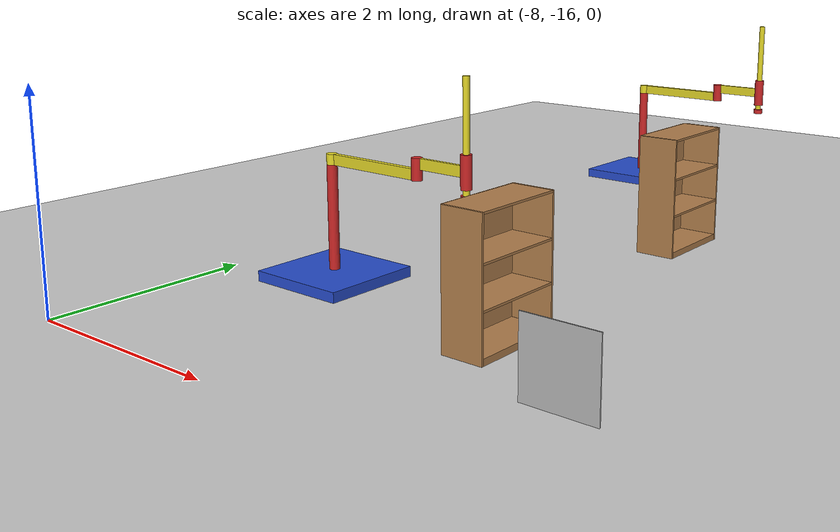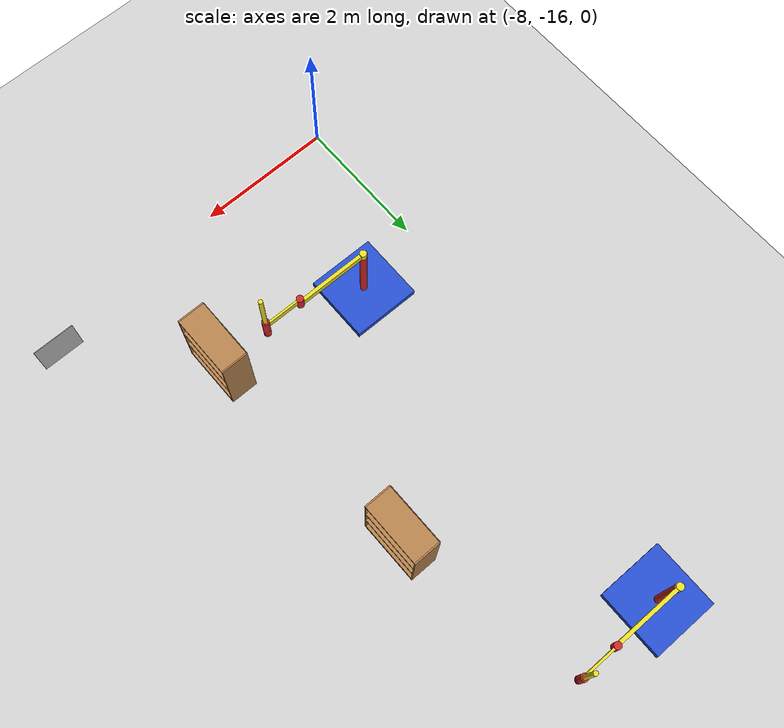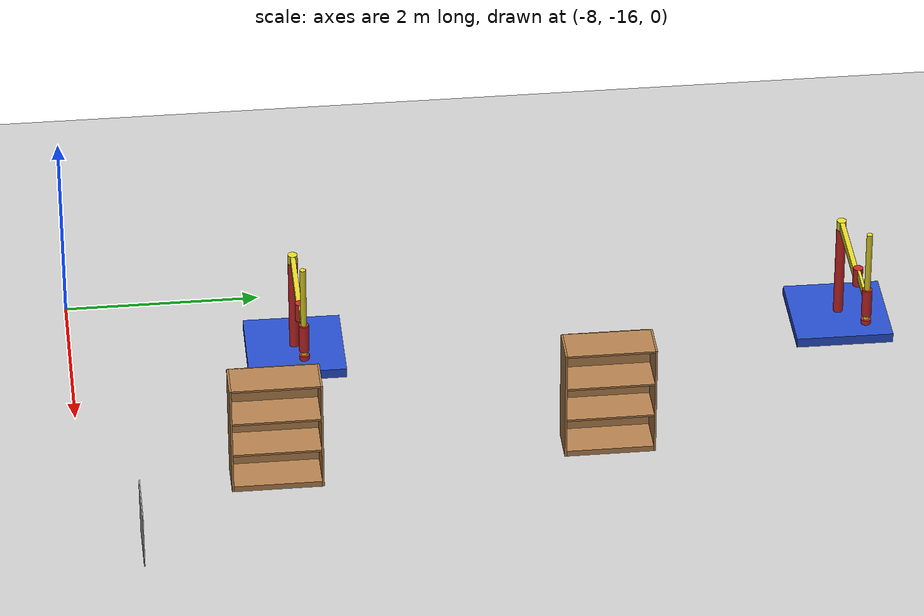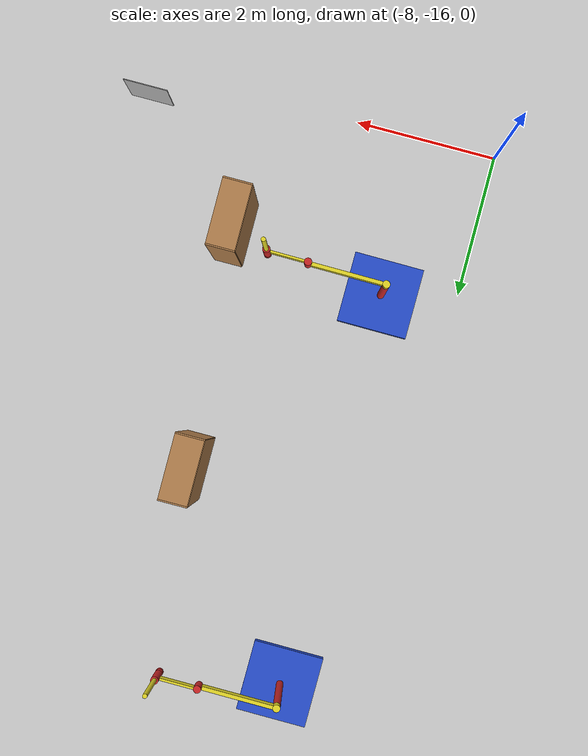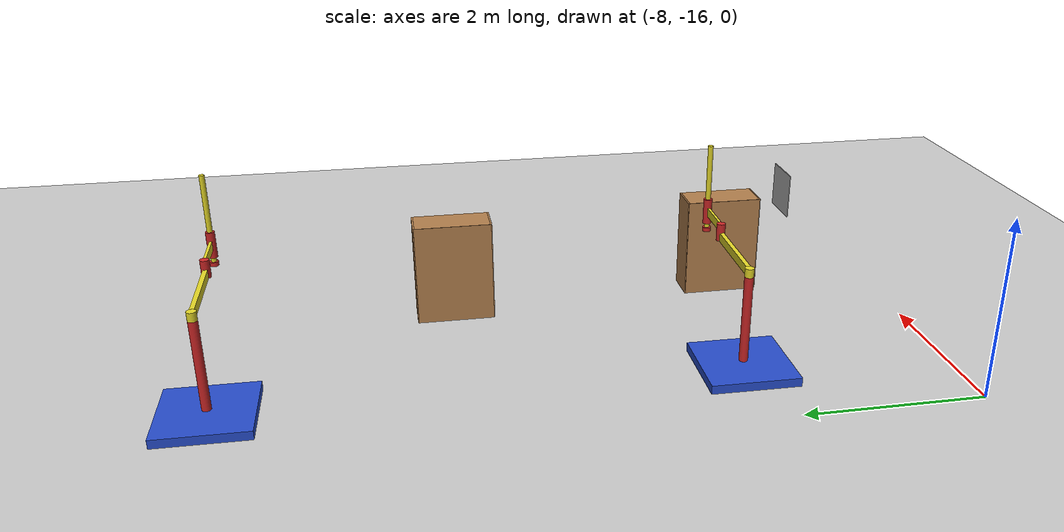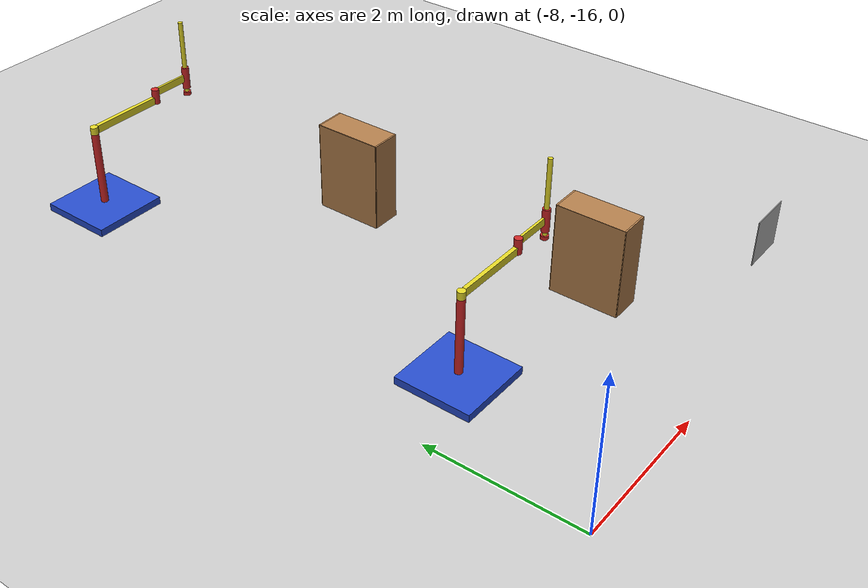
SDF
<sdf version="1.7">
 <world name="default">
  <model name="ground_plane">
   <static>1</static>
   <link name="link">
    <collision name="collision">
     <geometry><plane><normal>0 0 1</normal><size>25 25</size></plane></geometry>
     <surface><friction><ode><mu>100</mu><mu2>50</mu2></ode></friction></surface>
    </collision>
    <visual name="visual">
     <cast_shadows>0</cast_shadows>
     <geometry><plane><normal>0 0 1</normal><size>25 25</size></plane></geometry>
     <material>
      <script><uri>file://media/materials/scripts/gazebo.material</uri><name>Gazebo/Grey</name></script>
     </material>
    </visual>
   </link>
  </model>
  <model name="static_apriltag_5">
   <link name="link">
    <pose>0 0 0 -1.57 1.57 -0</pose>
    <inertial>
     <mass>0.39</mass>
     <inertia><ixx>0.00058</ixx><ixy>0</ixy><ixz>0</ixz><iyy>0.00058</iyy><iyz>0</iyz><izz>0.00019</izz></inertia>
    </inertial>
    <collision name="collision"><geometry><box><size>0.6 0.6 0.01</size></box></geometry></collision>
    <visual name="visual">
     <geometry><box><size>0.6 0.6 0.01</size></box></geometry>
     <material>
      <script>
       <uri>model://apriltag/materials/scripts</uri>
       <uri>model://apriltag/materials/textures</uri>
       <name>apriltag/Diffuse5</name>
      </script>
     </material>
    </visual>
    <gravity>0</gravity>
   </link>
   <pose>-3.19181 -15.4682 0.65103 0.000796 0.000796 1e-06</pose>
   <static>1</static>
   <pose>5.04082 3.71574 0 0 -0 0</pose>
  </model>
  <model name="simple_arm_clone">
   <link name="arm_base">
    <inertial>
     <pose>0 0 0.00099 0 -0 0</pose>
     <inertia><ixx>1.11</ixx><ixy>0</ixy><ixz>0</ixz><iyy>100.11</iyy><iyz>0</iyz><izz>1.01</izz></inertia>
     <mass>101</mass>
    </inertial>
    <collision name="arm_base_geom">
     <pose>0 0 0.05 0 -0 0</pose>
     <geometry><box><size>1 1 0.1</size></box></geometry>
    </collision>
    <visual name="arm_base_geom_visual">
     <pose>0 0 0.05 0 -0 0</pose>
     <geometry><box><size>1 1 0.1</size></box></geometry>
     <material>
      <script><uri>file://media/materials/scripts/gazebo.material</uri><name>Gazebo/Blue</name></script>
     </material>
    </visual>
    <collision name="arm_base_geom_arm_trunk">
     <pose>0 0 0.6 0 -0 0</pose>
     <geometry><cylinder><radius>0.05</radius><length>1</length></cylinder></geometry>
    </collision>
    <visual name="arm_base_geom_arm_trunk_visual">
     <pose>0 0 0.6 0 -0 0</pose>
     <geometry><cylinder><radius>0.05</radius><length>1</length></cylinder></geometry>
     <material>
      <script><uri>file://media/materials/scripts/gazebo.material</uri><name>Gazebo/Red</name></script>
     </material>
    </visual>
   </link>
   <link name="arm_shoulder_pan">
    <pose>0 0 1.1 0 -0 0</pose>
    <inertial>
     <pose>0.045455 0 0 0 -0 0</pose>
     <inertia><ixx>0.011</ixx><ixy>0</ixy><ixz>0</ixz><iyy>0.0225</iyy><iyz>0</iyz><izz>0.0135</izz></inertia>
     <mass>1.1</mass>
    </inertial>
    <collision name="arm_shoulder_pan_geom">
     <pose>0 0 0.05 0 -0 0</pose>
     <geometry><cylinder><radius>0.05</radius><length>0.1</length></cylinder></geometry>
    </collision>
    <visual name="arm_shoulder_pan_geom_visual">
     <pose>0 0 0.05 0 -0 0</pose>
     <geometry><cylinder><radius>0.05</radius><length>0.1</length></cylinder></geometry>
     <material>
      <script><uri>file://media/materials/scripts/gazebo.material</uri><name>Gazebo/Yellow</name></script>
     </material>
    </visual>
    <collision name="arm_shoulder_pan_geom_arm_shoulder">
     <pose>0.55 0 0.05 0 -0 0</pose>
     <geometry><box><size>1 0.05 0.1</size></box></geometry>
    </collision>
    <visual name="arm_shoulder_pan_geom_arm_shoulder_visual">
     <pose>0.55 0 0.05 0 -0 0</pose>
     <geometry><box><size>1 0.05 0.1</size></box></geometry>
     <material>
      <script><uri>file://media/materials/scripts/gazebo.material</uri><name>Gazebo/Yellow</name></script>
     </material>
    </visual>
   </link>
   <link name="arm_elbow_pan">
    <pose>1.05 0 1.1 0 -0 0</pose>
    <inertial>
     <pose>0.0875 0 0.083333 0 -0 0</pose>
     <inertia>
      <ixx>0.031</ixx>
      <ixy>0</ixy>
      <ixz>0.005</ixz>
      <iyy>0.07275</iyy>
      <iyz>0</iyz>
      <izz>0.04475</izz>
     </inertia>
     <mass>1.2</mass>
    </inertial>
    <collision name="arm_elbow_pan_geom">
     <pose>0 0 0.1 0 -0 0</pose>
     <geometry><cylinder><radius>0.05</radius><length>0.2</length></cylinder></geometry>
    </collision>
    <visual name="arm_elbow_pan_geom_visual">
     <pose>0 0 0.1 0 -0 0</pose>
     <geometry><cylinder><radius>0.05</radius><length>0.2</length></cylinder></geometry>
     <material>
      <script><uri>file://media/materials/scripts/gazebo.material</uri><name>Gazebo/Red</name></script>
     </material>
    </visual>
    <collision name="arm_elbow_pan_geom_arm_elbow">
     <pose>0.3 0 0.15 0 -0 0</pose>
     <geometry><box><size>0.5 0.03 0.1</size></box></geometry>
    </collision>
    <visual name="arm_elbow_pan_geom_arm_elbow_visual">
     <pose>0.3 0 0.15 0 -0 0</pose>
     <geometry><box><size>0.5 0.03 0.1</size></box></geometry>
     <material>
      <script><uri>file://media/materials/scripts/gazebo.material</uri><name>Gazebo/Yellow</name></script>
     </material>
    </visual>
    <collision name="arm_elbow_pan_geom_arm_wrist">
     <pose>0.55 0 0.15 0 -0 0</pose>
     <geometry><cylinder><radius>0.05</radius><length>0.3</length></cylinder></geometry>
    </collision>
    <visual name="arm_elbow_pan_geom_arm_wrist_visual">
     <pose>0.55 0 0.15 0 -0 0</pose>
     <geometry><cylinder><radius>0.05</radius><length>0.3</length></cylinder></geometry>
     <material>
      <script><uri>file://media/materials/scripts/gazebo.material</uri><name>Gazebo/Red</name></script>
     </material>
    </visual>
   </link>
   <link name="arm_wrist_lift">
    <pose>1.6 0 1.05 0 -0 0</pose>
    <inertial>
     <inertia><ixx>0.01</ixx><ixy>0</ixy><ixz>0</ixz><iyy>0.01</iyy><iyz>0</iyz><izz>0.001</izz></inertia>
     <mass>0.1</mass>
    </inertial>
    <collision name="arm_wrist_lift_geom">
     <pose>0 0 0.5 0 -0 0</pose>
     <geometry><cylinder><radius>0.03</radius><length>1</length></cylinder></geometry>
    </collision>
    <visual name="arm_wrist_lift_geom_visual">
     <pose>0 0 0.5 0 -0 0</pose>
     <geometry><cylinder><radius>0.03</radius><length>1</length></cylinder></geometry>
     <material>
      <script><uri>file://media/materials/scripts/gazebo.material</uri><name>Gazebo/Yellow</name></script>
     </material>
    </visual>
   </link>
   <link name="arm_wrist_roll">
    <pose>1.6 0 1 0 -0 0</pose>
    <inertial>
     <inertia><ixx>0.01</ixx><ixy>0</ixy><ixz>0</ixz><iyy>0.01</iyy><iyz>0</iyz><izz>0.001</izz></inertia>
     <mass>0.1</mass>
    </inertial>
    <collision name="arm_wrist_roll_geom">
     <pose>0 0 0.025 0 -0 0</pose>
     <geometry><cylinder><radius>0.05</radius><length>0.05</length></cylinder></geometry>
    </collision>
    <visual name="arm_wrist_roll_geom_visual">
     <pose>0 0 0.025 0 -0 0</pose>
     <geometry><cylinder><radius>0.05</radius><length>0.05</length></cylinder></geometry>
     <material>
      <script><uri>file://media/materials/scripts/gazebo.material</uri><name>Gazebo/Red</name></script>
     </material>
    </visual>
   </link>
   <joint name="arm_shoulder_pan_joint" type="revolute">
    <parent>arm_base</parent>
    <child>arm_shoulder_pan</child>
    <axis>
     <dynamics>
      <damping>1</damping>
      <friction>0</friction>
      <spring_reference>0</spring_reference>
      <spring_stiffness>0</spring_stiffness>
     </dynamics>
     <xyz expressed_in="__model__">0 0 1</xyz>
     <limit><lower>-1e+16</lower><upper>1e+16</upper></limit>
    </axis>
   </joint>
   <joint name="arm_elbow_pan_joint" type="revolute">
    <parent>arm_shoulder_pan</parent>
    <child>arm_elbow_pan</child>
    <axis>
     <dynamics>
      <damping>1</damping>
      <friction>0</friction>
      <spring_reference>0</spring_reference>
      <spring_stiffness>0</spring_stiffness>
     </dynamics>
     <xyz expressed_in="__model__">0 0 1</xyz>
     <limit><lower>-1e+16</lower><upper>1e+16</upper></limit>
    </axis>
   </joint>
   <joint name="arm_wrist_lift_joint" type="prismatic">
    <parent>arm_elbow_pan</parent>
    <child>arm_wrist_lift</child>
    <axis>
     <dynamics>
      <damping>1</damping>
      <friction>0</friction>
      <spring_reference>0</spring_reference>
      <spring_stiffness>0</spring_stiffness>
     </dynamics>
     <limit><lower>-0.8</lower><upper>0.1</upper></limit>
     <xyz expressed_in="__model__">0 0 1</xyz>
    </axis>
   </joint>
   <joint name="arm_wrist_roll_joint" type="revolute">
    <parent>arm_wrist_lift</parent>
    <child>arm_wrist_roll</child>
    <axis>
     <dynamics>
      <damping>1</damping>
      <friction>0</friction>
      <spring_reference>0</spring_reference>
      <spring_stiffness>0</spring_stiffness>
     </dynamics>
     <limit><lower>-2.99999</lower><upper>2.99999</upper></limit>
     <xyz expressed_in="__model__">0 0 1</xyz>
    </axis>
   </joint>
   <pose>-6.96317 -8.0337 -0 0 -0 -0.008518</pose>
  </model>
  <model name="simple_arm_clone_0">
   <link name="arm_base">
    <inertial>
     <pose>0 0 0.00099 0 -0 0</pose>
     <inertia><ixx>1.11</ixx><ixy>0</ixy><ixz>0</ixz><iyy>100.11</iyy><iyz>0</iyz><izz>1.01</izz></inertia>
     <mass>101</mass>
    </inertial>
    <collision name="arm_base_geom">
     <pose>0 0 0.05 0 -0 0</pose>
     <geometry><box><size>1 1 0.1</size></box></geometry>
    </collision>
    <visual name="arm_base_geom_visual">
     <pose>0 0 0.05 0 -0 0</pose>
     <geometry><box><size>1 1 0.1</size></box></geometry>
     <material>
      <script><uri>file://media/materials/scripts/gazebo.material</uri><name>Gazebo/Blue</name></script>
     </material>
    </visual>
    <collision name="arm_base_geom_arm_trunk">
     <pose>0 0 0.6 0 -0 0</pose>
     <geometry><cylinder><radius>0.05</radius><length>1</length></cylinder></geometry>
    </collision>
    <visual name="arm_base_geom_arm_trunk_visual">
     <pose>0 0 0.6 0 -0 0</pose>
     <geometry><cylinder><radius>0.05</radius><length>1</length></cylinder></geometry>
     <material>
      <script><uri>file://media/materials/scripts/gazebo.material</uri><name>Gazebo/Red</name></script>
     </material>
    </visual>
   </link>
   <link name="arm_shoulder_pan">
    <pose>0 0 1.1 0 -0 0</pose>
    <inertial>
     <pose>0.045455 0 0 0 -0 0</pose>
     <inertia><ixx>0.011</ixx><ixy>0</ixy><ixz>0</ixz><iyy>0.0225</iyy><iyz>0</iyz><izz>0.0135</izz></inertia>
     <mass>1.1</mass>
    </inertial>
    <collision name="arm_shoulder_pan_geom">
     <pose>0 0 0.05 0 -0 0</pose>
     <geometry><cylinder><radius>0.05</radius><length>0.1</length></cylinder></geometry>
    </collision>
    <visual name="arm_shoulder_pan_geom_visual">
     <pose>0 0 0.05 0 -0 0</pose>
     <geometry><cylinder><radius>0.05</radius><length>0.1</length></cylinder></geometry>
     <material>
      <script><uri>file://media/materials/scripts/gazebo.material</uri><name>Gazebo/Yellow</name></script>
     </material>
    </visual>
    <collision name="arm_shoulder_pan_geom_arm_shoulder">
     <pose>0.55 0 0.05 0 -0 0</pose>
     <geometry><box><size>1 0.05 0.1</size></box></geometry>
    </collision>
    <visual name="arm_shoulder_pan_geom_arm_shoulder_visual">
     <pose>0.55 0 0.05 0 -0 0</pose>
     <geometry><box><size>1 0.05 0.1</size></box></geometry>
     <material>
      <script><uri>file://media/materials/scripts/gazebo.material</uri><name>Gazebo/Yellow</name></script>
     </material>
    </visual>
   </link>
   <link name="arm_elbow_pan">
    <pose>1.05 0 1.1 0 -0 0</pose>
    <inertial>
     <pose>0.0875 0 0.083333 0 -0 0</pose>
     <inertia>
      <ixx>0.031</ixx>
      <ixy>0</ixy>
      <ixz>0.005</ixz>
      <iyy>0.07275</iyy>
      <iyz>0</iyz>
      <izz>0.04475</izz>
     </inertia>
     <mass>1.2</mass>
    </inertial>
    <collision name="arm_elbow_pan_geom">
     <pose>0 0 0.1 0 -0 0</pose>
     <geometry><cylinder><radius>0.05</radius><length>0.2</length></cylinder></geometry>
    </collision>
    <visual name="arm_elbow_pan_geom_visual">
     <pose>0 0 0.1 0 -0 0</pose>
     <geometry><cylinder><radius>0.05</radius><length>0.2</length></cylinder></geometry>
     <material>
      <script><uri>file://media/materials/scripts/gazebo.material</uri><name>Gazebo/Red</name></script>
     </material>
    </visual>
    <collision name="arm_elbow_pan_geom_arm_elbow">
     <pose>0.3 0 0.15 0 -0 0</pose>
     <geometry><box><size>0.5 0.03 0.1</size></box></geometry>
    </collision>
    <visual name="arm_elbow_pan_geom_arm_elbow_visual">
     <pose>0.3 0 0.15 0 -0 0</pose>
     <geometry><box><size>0.5 0.03 0.1</size></box></geometry>
     <material>
      <script><uri>file://media/materials/scripts/gazebo.material</uri><name>Gazebo/Yellow</name></script>
     </material>
    </visual>
    <collision name="arm_elbow_pan_geom_arm_wrist">
     <pose>0.55 0 0.15 0 -0 0</pose>
     <geometry><cylinder><radius>0.05</radius><length>0.3</length></cylinder></geometry>
    </collision>
    <visual name="arm_elbow_pan_geom_arm_wrist_visual">
     <pose>0.55 0 0.15 0 -0 0</pose>
     <geometry><cylinder><radius>0.05</radius><length>0.3</length></cylinder></geometry>
     <material>
      <script><uri>file://media/materials/scripts/gazebo.material</uri><name>Gazebo/Red</name></script>
     </material>
    </visual>
   </link>
   <link name="arm_wrist_lift">
    <pose>1.6 0 1.05 0 -0 0</pose>
    <inertial>
     <inertia><ixx>0.01</ixx><ixy>0</ixy><ixz>0</ixz><iyy>0.01</iyy><iyz>0</iyz><izz>0.001</izz></inertia>
     <mass>0.1</mass>
    </inertial>
    <collision name="arm_wrist_lift_geom">
     <pose>0 0 0.5 0 -0 0</pose>
     <geometry><cylinder><radius>0.03</radius><length>1</length></cylinder></geometry>
    </collision>
    <visual name="arm_wrist_lift_geom_visual">
     <pose>0 0 0.5 0 -0 0</pose>
     <geometry><cylinder><radius>0.03</radius><length>1</length></cylinder></geometry>
     <material>
      <script><uri>file://media/materials/scripts/gazebo.material</uri><name>Gazebo/Yellow</name></script>
     </material>
    </visual>
   </link>
   <link name="arm_wrist_roll">
    <pose>1.6 0 1 0 -0 0</pose>
    <inertial>
     <inertia><ixx>0.01</ixx><ixy>0</ixy><ixz>0</ixz><iyy>0.01</iyy><iyz>0</iyz><izz>0.001</izz></inertia>
     <mass>0.1</mass>
    </inertial>
    <collision name="arm_wrist_roll_geom">
     <pose>0 0 0.025 0 -0 0</pose>
     <geometry><cylinder><radius>0.05</radius><length>0.05</length></cylinder></geometry>
    </collision>
    <visual name="arm_wrist_roll_geom_visual">
     <pose>0 0 0.025 0 -0 0</pose>
     <geometry><cylinder><radius>0.05</radius><length>0.05</length></cylinder></geometry>
     <material>
      <script><uri>file://media/materials/scripts/gazebo.material</uri><name>Gazebo/Red</name></script>
     </material>
    </visual>
   </link>
   <joint name="arm_shoulder_pan_joint" type="revolute">
    <parent>arm_base</parent>
    <child>arm_shoulder_pan</child>
    <axis>
     <dynamics>
      <damping>1</damping>
      <friction>0</friction>
      <spring_reference>0</spring_reference>
      <spring_stiffness>0</spring_stiffness>
     </dynamics>
     <xyz expressed_in="__model__">0 0 1</xyz>
     <limit><lower>-1e+16</lower><upper>1e+16</upper></limit>
    </axis>
   </joint>
   <joint name="arm_elbow_pan_joint" type="revolute">
    <parent>arm_shoulder_pan</parent>
    <child>arm_elbow_pan</child>
    <axis>
     <dynamics>
      <damping>1</damping>
      <friction>0</friction>
      <spring_reference>0</spring_reference>
      <spring_stiffness>0</spring_stiffness>
     </dynamics>
     <xyz expressed_in="__model__">0 0 1</xyz>
     <limit><lower>-1e+16</lower><upper>1e+16</upper></limit>
    </axis>
   </joint>
   <joint name="arm_wrist_lift_joint" type="prismatic">
    <parent>arm_elbow_pan</parent>
    <child>arm_wrist_lift</child>
    <axis>
     <dynamics>
      <damping>1</damping>
      <friction>0</friction>
      <spring_reference>0</spring_reference>
      <spring_stiffness>0</spring_stiffness>
     </dynamics>
     <limit><lower>-0.8</lower><upper>0.1</upper></limit>
     <xyz expressed_in="__model__">0 0 1</xyz>
    </axis>
   </joint>
   <joint name="arm_wrist_roll_joint" type="revolute">
    <parent>arm_wrist_lift</parent>
    <child>arm_wrist_roll</child>
    <axis>
     <dynamics>
      <damping>1</damping>
      <friction>0</friction>
      <spring_reference>0</spring_reference>
      <spring_stiffness>0</spring_stiffness>
     </dynamics>
     <limit><lower>-2.99999</lower><upper>2.99999</upper></limit>
     <xyz expressed_in="__model__">0 0 1</xyz>
    </axis>
   </joint>
   <pose>-6.93572 -13.6976 -0 0 -0 -0.008523</pose>
  </model>
  <model name="bookshelf_clone">
   <static>1</static>
   <link name="link">
    <inertial><mass>1</mass></inertial>
    <collision name="back">
     <pose>0 0.005 0.6 0 -0 0</pose>
     <geometry><box><size>0.9 0.01 1.2</size></box></geometry>
    </collision>
    <visual name="visual1">
     <pose>0 0.005 0.6 0 -0 0</pose>
     <geometry><box><size>0.9 0.01 1.2</size></box></geometry>
     <material>
      <script><uri>file://media/materials/scripts/gazebo.material</uri><name>Gazebo/Wood</name></script>
     </material>
    </visual>
    <collision name="left_side">
     <pose>0.45 -0.195 0.6 0 -0 0</pose>
     <geometry><box><size>0.02 0.4 1.2</size></box></geometry>
    </collision>
    <visual name="visual2">
     <pose>0.45 -0.195 0.6 0 -0 0</pose>
     <geometry><box><size>0.02 0.4 1.2</size></box></geometry>
     <material>
      <script><uri>file://media/materials/scripts/gazebo.material</uri><name>Gazebo/Wood</name></script>
     </material>
    </visual>
    <collision name="right_side">
     <pose>-0.45 -0.195 0.6 0 -0 0</pose>
     <geometry><box><size>0.02 0.4 1.2</size></box></geometry>
    </collision>
    <visual name="visual3">
     <pose>-0.45 -0.195 0.6 0 -0 0</pose>
     <geometry><box><size>0.02 0.4 1.2</size></box></geometry>
     <material>
      <script><uri>file://media/materials/scripts/gazebo.material</uri><name>Gazebo/Wood</name></script>
     </material>
    </visual>
    <collision name="bottom">
     <pose>0 -0.195 0.03 0 -0 0</pose>
     <geometry><box><size>0.88 0.4 0.06</size></box></geometry>
    </collision>
    <visual name="visual4">
     <pose>0 -0.195 0.03 0 -0 0</pose>
     <geometry><box><size>0.88 0.4 0.06</size></box></geometry>
     <material>
      <script><uri>file://media/materials/scripts/gazebo.material</uri><name>Gazebo/Wood</name></script>
     </material>
    </visual>
    <collision name="top">
     <pose>0 -0.195 1.19 0 -0 0</pose>
     <geometry><box><size>0.88 0.4 0.02</size></box></geometry>
    </collision>
    <visual name="visual5">
     <pose>0 -0.195 1.19 0 -0 0</pose>
     <geometry><box><size>0.88 0.4 0.02</size></box></geometry>
     <material>
      <script><uri>file://media/materials/scripts/gazebo.material</uri><name>Gazebo/Wood</name></script>
     </material>
    </visual>
    <collision name="low_shelf">
     <pose>0 -0.195 0.43 0 -0 0</pose>
     <geometry><box><size>0.88 0.4 0.02</size></box></geometry>
    </collision>
    <visual name="visual6">
     <pose>0 -0.195 0.43 0 -0 0</pose>
     <geometry><box><size>0.88 0.4 0.02</size></box></geometry>
     <material>
      <script><uri>file://media/materials/scripts/gazebo.material</uri><name>Gazebo/Wood</name></script>
     </material>
    </visual>
    <collision name="high_shelf">
     <pose>0 -0.195 0.8 0 -0 0</pose>
     <geometry><box><size>0.88 0.4 0.02</size></box></geometry>
    </collision>
    <visual name="visual7">
     <pose>0 -0.195 0.8 0 -0 0</pose>
     <geometry><box><size>0.88 0.4 0.02</size></box></geometry>
     <material>
      <script><uri>file://media/materials/scripts/gazebo.material</uri><name>Gazebo/Wood</name></script>
     </material>
    </visual>
   </link>
   <pose>-5.17783 -10.6998 0 0 -0 1.57</pose>
  </model>
  <model name="bookshelf_clone_1">
   <static>1</static>
   <link name="link">
    <inertial><mass>1</mass></inertial>
    <collision name="back">
     <pose>0 0.005 0.6 0 -0 0</pose>
     <geometry><box><size>0.9 0.01 1.2</size></box></geometry>
    </collision>
    <visual name="visual1">
     <pose>0 0.005 0.6 0 -0 0</pose>
     <geometry><box><size>0.9 0.01 1.2</size></box></geometry>
     <material>
      <script><uri>file://media/materials/scripts/gazebo.material</uri><name>Gazebo/Wood</name></script>
     </material>
    </visual>
    <collision name="left_side">
     <pose>0.45 -0.195 0.6 0 -0 0</pose>
     <geometry><box><size>0.02 0.4 1.2</size></box></geometry>
    </collision>
    <visual name="visual2">
     <pose>0.45 -0.195 0.6 0 -0 0</pose>
     <geometry><box><size>0.02 0.4 1.2</size></box></geometry>
     <material>
      <script><uri>file://media/materials/scripts/gazebo.material</uri><name>Gazebo/Wood</name></script>
     </material>
    </visual>
    <collision name="right_side">
     <pose>-0.45 -0.195 0.6 0 -0 0</pose>
     <geometry><box><size>0.02 0.4 1.2</size></box></geometry>
    </collision>
    <visual name="visual3">
     <pose>-0.45 -0.195 0.6 0 -0 0</pose>
     <geometry><box><size>0.02 0.4 1.2</size></box></geometry>
     <material>
      <script><uri>file://media/materials/scripts/gazebo.material</uri><name>Gazebo/Wood</name></script>
     </material>
    </visual>
    <collision name="bottom">
     <pose>0 -0.195 0.03 0 -0 0</pose>
     <geometry><box><size>0.88 0.4 0.06</size></box></geometry>
    </collision>
    <visual name="visual4">
     <pose>0 -0.195 0.03 0 -0 0</pose>
     <geometry><box><size>0.88 0.4 0.06</size></box></geometry>
     <material>
      <script><uri>file://media/materials/scripts/gazebo.material</uri><name>Gazebo/Wood</name></script>
     </material>
    </visual>
    <collision name="top">
     <pose>0 -0.195 1.19 0 -0 0</pose>
     <geometry><box><size>0.88 0.4 0.02</size></box></geometry>
    </collision>
    <visual name="visual5">
     <pose>0 -0.195 1.19 0 -0 0</pose>
     <geometry><box><size>0.88 0.4 0.02</size></box></geometry>
     <material>
      <script><uri>file://media/materials/scripts/gazebo.material</uri><name>Gazebo/Wood</name></script>
     </material>
    </visual>
    <collision name="low_shelf">
     <pose>0 -0.195 0.43 0 -0 0</pose>
     <geometry><box><size>0.88 0.4 0.02</size></box></geometry>
    </collision>
    <visual name="visual6">
     <pose>0 -0.195 0.43 0 -0 0</pose>
     <geometry><box><size>0.88 0.4 0.02</size></box></geometry>
     <material>
      <script><uri>file://media/materials/scripts/gazebo.material</uri><name>Gazebo/Wood</name></script>
     </material>
    </visual>
    <collision name="high_shelf">
     <pose>0 -0.195 0.8 0 -0 0</pose>
     <geometry><box><size>0.88 0.4 0.02</size></box></geometry>
    </collision>
    <visual name="visual7">
     <pose>0 -0.195 0.8 0 -0 0</pose>
     <geometry><box><size>0.88 0.4 0.02</size></box></geometry>
     <material>
      <script><uri>file://media/materials/scripts/gazebo.material</uri><name>Gazebo/Wood</name></script>
     </material>
    </visual>
   </link>
   <pose>-4.92762 -14.0554 0 0 -0 1.57</pose>
  </model>
 </world>
</sdf>
